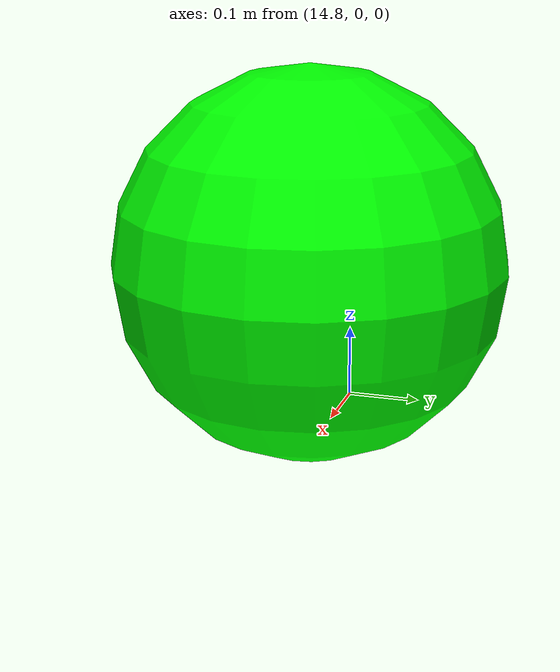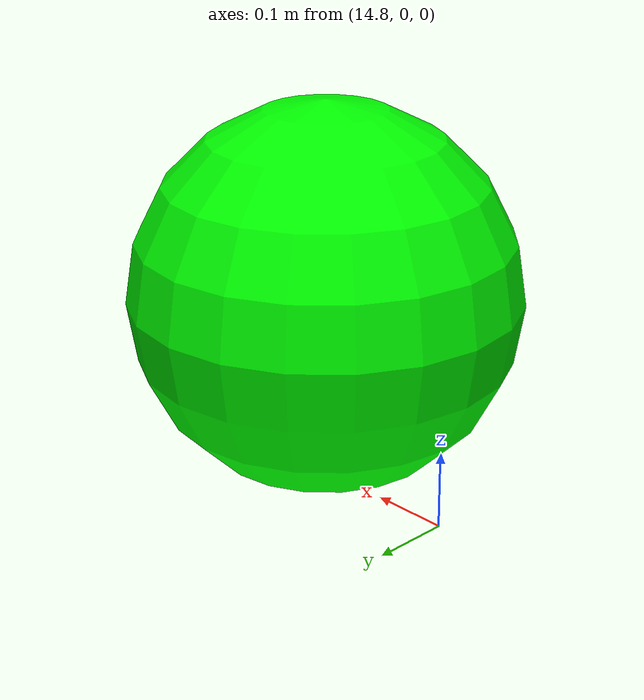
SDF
<?xml version="1.0" ?>
<sdf version="1.6">
  <model name="goal_marker_1">
    <pose>15 0 0.25 0 0 0</pose> <!-- Position of the goal -->
    <link name="link">
      <visual name="visual">
        <geometry>
          <sphere>
            <radius>0.25</radius> <!-- Size of the sphere -->
          </sphere>
        </geometry>
        <material>
          <ambient>0 1 0 1</ambient> <!-- Green color -->
          <diffuse>0 1 0 1</diffuse>
        </material>
      </visual>
    </link>
  </model>
</sdf>
